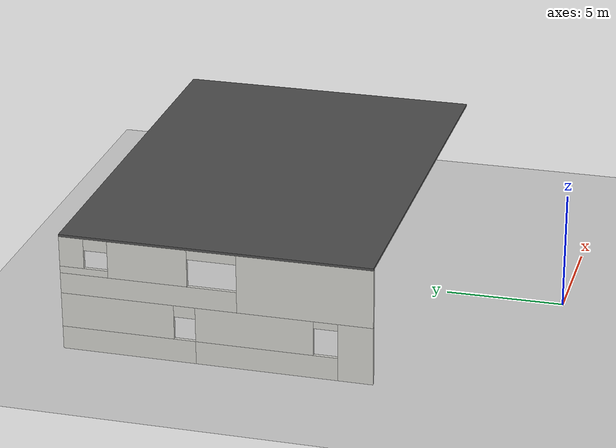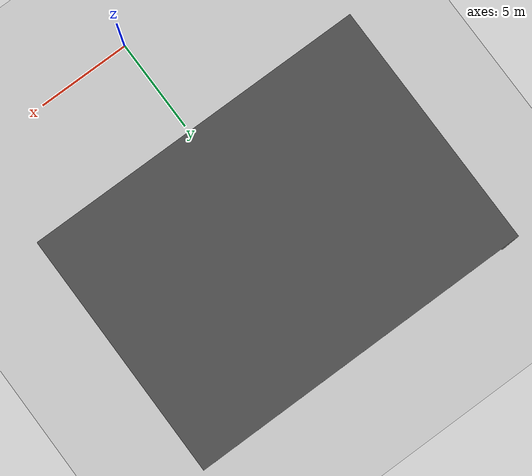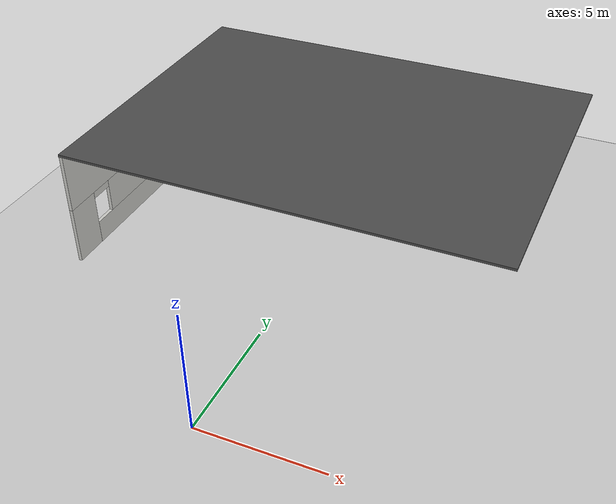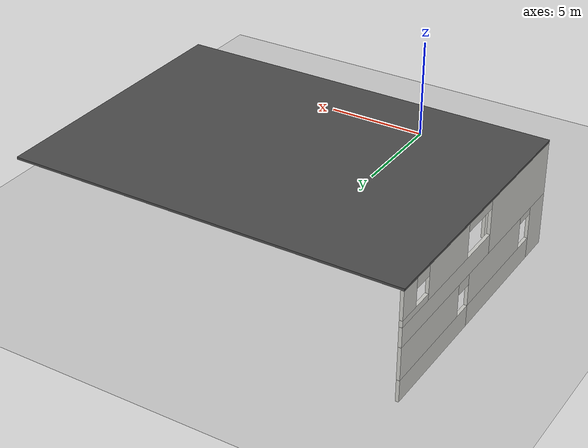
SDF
<sdf version="1.6">
 <world name="default">
  <model name="ground_plane">
   <static>1</static>
   <link name="link">
    <collision name="collision">
     <geometry><plane><normal>0 0 1</normal><size>100 100</size></plane></geometry>
     <surface>
      <contact><collide_bitmask>65535</collide_bitmask></contact>
      <friction><ode><mu>100</mu><mu2>50</mu2></ode></friction>
     </surface>
    </collision>
    <visual name="visual">
     <cast_shadows>0</cast_shadows>
     <geometry><plane><normal>0 0 1</normal><size>100 100</size></plane></geometry>
     <material>
      <script><uri>file://media/materials/scripts/gazebo.material</uri><name>Gazebo/Grey</name></script>
     </material>
    </visual>
   </link>
  </model>
  <model name="asphalt_plane">
   <static>1</static>
   <link name="link">
    <collision name="collision"><geometry><box><size>18.0246 12.9845 0.1</size></box></geometry></collision>
    <visual name="visual">
     <cast_shadows>0</cast_shadows>
     <geometry><box><size>18.0246 12.9845 0.1</size></box></geometry>
     <material>
      <script>
       <uri>model://asphalt_plane/materials/scripts</uri>
       <uri>model://asphalt_plane/materials/textures</uri>
       <name>vrc/asphalt</name>
      </script>
     </material>
    </visual>
   </link>
   <pose>0.009253 12.617 5.05625 0 -0 0</pose>
  </model>
  <model name="Indoor_Scenario1">
   <pose>0.016123 12.6195 0 0 -0 0</pose>
   <link name="Wall_1">
    <pose>-8.925 -0 0 0 -0 1.5708</pose>
    <visual name="Wall_1_Visual_0">
     <pose>-5.77686 0 1.25 0 -0 0</pose>
     <geometry><box><size>1.44627 0.15 2.5</size></box></geometry>
     <material>
      <script><uri>file://media/materials/scripts/gazebo.material</uri><name>Gazebo/CeilingTiled</name></script>
      <ambient>0.647059 0.505882 0.309804 1</ambient>
     </material>
     <meta><layer>0</layer></meta>
    </visual>
    <collision name="Wall_1_Collision_0">
     <geometry><box><size>1.44627 0.15 2.5</size></box></geometry>
     <pose>-5.77686 0 1.25 0 -0 0</pose>
    </collision>
    <visual name="Wall_1_Visual_1">
     <pose>-2.10736 0 0.5 0 -0 0</pose>
     <geometry><box><size>5.89273 0.15 1</size></box></geometry>
     <material>
      <script><uri>file://media/materials/scripts/gazebo.material</uri><name>Gazebo/CeilingTiled</name></script>
      <ambient>0.647059 0.505882 0.309804 1</ambient>
     </material>
     <meta><layer>0</layer></meta>
    </visual>
    <collision name="Wall_1_Collision_1">
     <geometry><box><size>5.89273 0.15 1</size></box></geometry>
     <pose>-2.10736 0 0.5 0 -0 0</pose>
    </collision>
    <visual name="Wall_1_Visual_2">
     <pose>3.6695 0 0.5 0 -0 0</pose>
     <geometry><box><size>5.66099 0.15 1</size></box></geometry>
     <material>
      <script><uri>file://media/materials/scripts/gazebo.material</uri><name>Gazebo/CeilingTiled</name></script>
      <ambient>0.647059 0.505882 0.309804 1</ambient>
     </material>
     <meta><layer>0</layer></meta>
    </visual>
    <collision name="Wall_1_Collision_2">
     <geometry><box><size>5.66099 0.15 1</size></box></geometry>
     <pose>3.6695 0 0.5 0 -0 0</pose>
    </collision>
    <visual name="Wall_1_Visual_3">
     <pose>4.1195 0 1.75 0 -0 0</pose>
     <geometry><box><size>4.76099 0.15 1.5</size></box></geometry>
     <material>
      <script><uri>file://media/materials/scripts/gazebo.material</uri><name>Gazebo/CeilingTiled</name></script>
      <ambient>0.647059 0.505882 0.309804 1</ambient>
     </material>
     <meta><layer>0</layer></meta>
    </visual>
    <collision name="Wall_1_Collision_3">
     <geometry><box><size>4.76099 0.15 1.5</size></box></geometry>
     <pose>4.1195 0 1.75 0 -0 0</pose>
    </collision>
    <visual name="Wall_1_Visual_4">
     <pose>-1.60736 0 1.75 0 -0 0</pose>
     <geometry><box><size>4.89273 0.15 1.5</size></box></geometry>
     <material>
      <script><uri>file://media/materials/scripts/gazebo.material</uri><name>Gazebo/CeilingTiled</name></script>
      <ambient>0.647059 0.505882 0.309804 1</ambient>
     </material>
     <meta><layer>0</layer></meta>
    </visual>
    <collision name="Wall_1_Collision_4">
     <geometry><box><size>4.89273 0.15 1.5</size></box></geometry>
     <pose>-1.60736 0 1.75 0 -0 0</pose>
    </collision>
    <visual name="Wall_1_Visual_5">
     <pose>-1.60736 0 1.75 0 -0 0</pose>
     <geometry><box><size>4.89273 0.15 1.5</size></box></geometry>
     <material>
      <script><uri>file://media/materials/scripts/gazebo.material</uri><name>Gazebo/CeilingTiled</name></script>
      <ambient>0.647059 0.505882 0.309804 1</ambient>
     </material>
     <meta><layer>0</layer></meta>
    </visual>
    <collision name="Wall_1_Collision_5">
     <geometry><box><size>4.89273 0.15 1.5</size></box></geometry>
     <pose>-1.60736 0 1.75 0 -0 0</pose>
    </collision>
    <visual name="Wall_1_Visual_6">
     <pose>1.28901 0 2.25 0 -0 0</pose>
     <geometry><box><size>0.9 0.15 0.5</size></box></geometry>
     <material>
      <script><uri>file://media/materials/scripts/gazebo.material</uri><name>Gazebo/CeilingTiled</name></script>
      <ambient>0.647059 0.505882 0.309804 1</ambient>
     </material>
     <meta><layer>0</layer></meta>
    </visual>
    <collision name="Wall_1_Collision_6">
     <geometry><box><size>0.9 0.15 0.5</size></box></geometry>
     <pose>1.28901 0 2.25 0 -0 0</pose>
    </collision>
    <visual name="Wall_1_Visual_7">
     <pose>1.28901 0 2.25 0 -0 0</pose>
     <geometry><box><size>0.9 0.15 0.5</size></box></geometry>
     <material>
      <script><uri>file://media/materials/scripts/gazebo.material</uri><name>Gazebo/CeilingTiled</name></script>
      <ambient>0.647059 0.505882 0.309804 1</ambient>
     </material>
     <meta><layer>0</layer></meta>
    </visual>
    <collision name="Wall_1_Collision_7">
     <geometry><box><size>0.9 0.15 0.5</size></box></geometry>
     <pose>1.28901 0 2.25 0 -0 0</pose>
    </collision>
    <visual name="Wall_1_Visual_8">
     <pose>-4.55373 0 2.35 0 -0 0</pose>
     <geometry><box><size>1 0.15 0.3</size></box></geometry>
     <material>
      <script><uri>file://media/materials/scripts/gazebo.material</uri><name>Gazebo/CeilingTiled</name></script>
      <ambient>0.647059 0.505882 0.309804 1</ambient>
     </material>
     <meta><layer>0</layer></meta>
    </visual>
    <collision name="Wall_1_Collision_8">
     <geometry><box><size>1 0.15 0.3</size></box></geometry>
     <pose>-4.55373 0 2.35 0 -0 0</pose>
    </collision>
   </link>
   <link name="Wall_101">
    <collision name="Wall_101_Collision">
     <geometry><box><size>0.75 0.15 2.5</size></box></geometry>
     <pose>0 0 1.25 0 -0 0</pose>
    </collision>
    <visual name="Wall_101_Visual">
     <pose>0 0 1.25 0 -0 0</pose>
     <geometry><box><size>0.75 0.15 2.5</size></box></geometry>
     <material>
      <script><uri>file://media/materials/scripts/gazebo.material</uri><name>Gazebo/CeilingTiled</name></script>
      <ambient>1 1 1 1</ambient>
     </material>
     <meta><layer>1</layer></meta>
    </visual>
    <pose>-8.58941 -1.93229 2.5 0 -0 0</pose>
   </link>
   <link name="Wall_102">
    <collision name="Wall_102_Collision">
     <geometry><box><size>0.5 0.15 2.5</size></box></geometry>
     <pose>0 0 1.25 0 -0 0</pose>
    </collision>
    <visual name="Wall_102_Visual">
     <pose>0 0 1.25 0 -0 0</pose>
     <geometry><box><size>0.5 0.15 2.5</size></box></geometry>
     <material>
      <script><uri>file://media/materials/scripts/gazebo.material</uri><name>Gazebo/CeilingTiled</name></script>
      <ambient>1 1 1 1</ambient>
     </material>
     <meta><layer>1</layer></meta>
    </visual>
    <pose>-8.28941 -2.10729 2.5 0 -0 -1.5708</pose>
   </link>
   <link name="Wall_55">
    <pose>-8.925 -0 2.5 0 -0 1.5708</pose>
    <visual name="Wall_55_Visual_0">
     <pose>-3.7021 0 1.25 0 -0 0</pose>
     <geometry><box><size>5.59579 0.15 2.5</size></box></geometry>
     <material>
      <script><uri>file://media/materials/scripts/gazebo.material</uri><name>Gazebo/CeilingTiled</name></script>
      <ambient>0.647059 0.505882 0.305882 1</ambient>
     </material>
     <meta><layer>1</layer></meta>
    </visual>
    <collision name="Wall_55_Collision_0">
     <geometry><box><size>5.59579 0.15 2.5</size></box></geometry>
     <pose>-3.7021 0 1.25 0 -0 0</pose>
    </collision>
    <visual name="Wall_55_Visual_1">
     <pose>2.7979 0 0.45 0 -0 0</pose>
     <geometry><box><size>7.40421 0.15 0.9</size></box></geometry>
     <material>
      <script><uri>file://media/materials/scripts/gazebo.material</uri><name>Gazebo/CeilingTiled</name></script>
      <ambient>0.647059 0.505882 0.305882 1</ambient>
     </material>
     <meta><layer>1</layer></meta>
    </visual>
    <collision name="Wall_55_Collision_1">
     <geometry><box><size>7.40421 0.15 0.9</size></box></geometry>
     <pose>2.7979 0 0.45 0 -0 0</pose>
    </collision>
    <visual name="Wall_55_Visual_2">
     <pose>2.80473 0 1.7 0 -0 0</pose>
     <geometry><box><size>3.32387 0.15 1.6</size></box></geometry>
     <material>
      <script><uri>file://media/materials/scripts/gazebo.material</uri><name>Gazebo/CeilingTiled</name></script>
      <ambient>0.647059 0.505882 0.305882 1</ambient>
     </material>
     <meta><layer>1</layer></meta>
    </visual>
    <collision name="Wall_55_Collision_2">
     <geometry><box><size>3.32387 0.15 1.6</size></box></geometry>
     <pose>2.80473 0 1.7 0 -0 0</pose>
    </collision>
    <visual name="Wall_55_Visual_3">
     <pose>5.48333 0 1.05 0 -0 0</pose>
     <geometry><box><size>2.03333 0.15 0.3</size></box></geometry>
     <material>
      <script><uri>file://media/materials/scripts/gazebo.material</uri><name>Gazebo/CeilingTiled</name></script>
      <ambient>0.647059 0.505882 0.305882 1</ambient>
     </material>
     <meta><layer>1</layer></meta>
    </visual>
    <collision name="Wall_55_Collision_3">
     <geometry><box><size>2.03333 0.15 0.3</size></box></geometry>
     <pose>5.48333 0 1.05 0 -0 0</pose>
    </collision>
    <visual name="Wall_55_Visual_4">
     <pose>5.98333 0 1.85 0 -0 0</pose>
     <geometry><box><size>1.03333 0.15 1.3</size></box></geometry>
     <material>
      <script><uri>file://media/materials/scripts/gazebo.material</uri><name>Gazebo/CeilingTiled</name></script>
      <ambient>0.647059 0.505882 0.305882 1</ambient>
     </material>
     <meta><layer>1</layer></meta>
    </visual>
    <collision name="Wall_55_Collision_4">
     <geometry><box><size>1.03333 0.15 1.3</size></box></geometry>
     <pose>5.98333 0 1.85 0 -0 0</pose>
    </collision>
    <visual name="Wall_55_Visual_5">
     <pose>4.96667 0 2.25 0 -0 0</pose>
     <geometry><box><size>1 0.15 0.5</size></box></geometry>
     <material>
      <script><uri>file://media/materials/scripts/gazebo.material</uri><name>Gazebo/CeilingTiled</name></script>
      <ambient>0.647059 0.505882 0.305882 1</ambient>
     </material>
     <meta><layer>1</layer></meta>
    </visual>
    <collision name="Wall_55_Collision_5">
     <geometry><box><size>1 0.15 0.5</size></box></geometry>
     <pose>4.96667 0 2.25 0 -0 0</pose>
    </collision>
    <visual name="Wall_55_Visual_6">
     <pose>0.119295 0 2.3 0 -0 0</pose>
     <geometry><box><size>2.047 0.15 0.4</size></box></geometry>
     <material>
      <script><uri>file://media/materials/scripts/gazebo.material</uri><name>Gazebo/CeilingTiled</name></script>
      <ambient>0.647059 0.505882 0.305882 1</ambient>
     </material>
     <meta><layer>1</layer></meta>
    </visual>
    <collision name="Wall_55_Collision_6">
     <geometry><box><size>2.047 0.15 0.4</size></box></geometry>
     <pose>0.119295 0 2.3 0 -0 0</pose>
    </collision>
   </link>
   <static>1</static>
  </model>
 </world>
</sdf>
